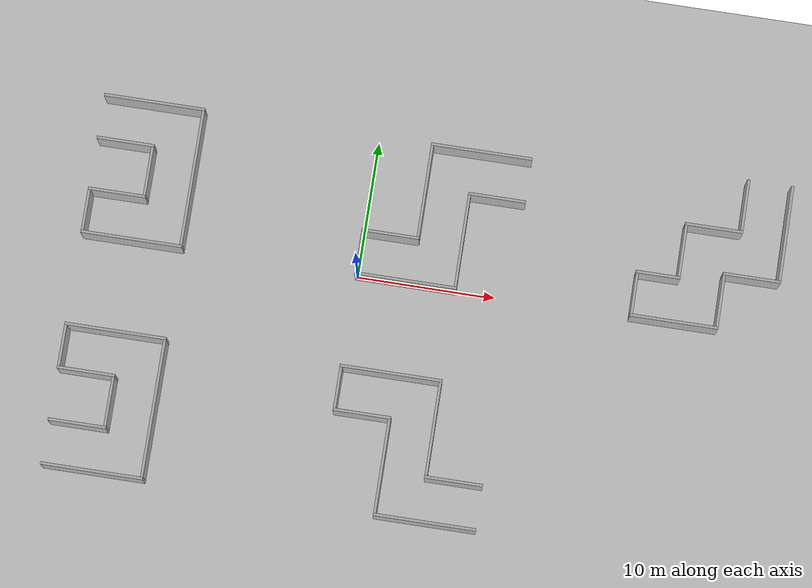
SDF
<sdf version="1.4">
 <world name="feedback_experiment_world_0">
  <include><uri>model://ground_plane</uri></include>
  <include><uri>model://sun</uri></include>
  <model name="World_0">
   <link name="Wall_1">
    <collision name="Wall_1_Collision">
     <geometry><box><size>7.4 0.2 2.5</size></box></geometry>
     <pose>0 0 1.25 0 0 0</pose>
    </collision>
    <visual name="Wall_1_Visual">
     <pose>0 0 1.25 0 0 0</pose>
     <geometry><box><size>7.4 0.2 2.5</size></box></geometry>
     <material>
      <script><uri>file://media/materials/scripts/kitchen.material</uri><name>Kitchen/Wall</name></script>
     </material>
    </visual>
    <velocity_decay><linear>0</linear><angular>0</angular></velocity_decay>
    <pose>3.5 -0.1 0 0 0 0</pose>
   </link>
   <link name="Wall_2">
    <collision name="Wall_2_Collision">
     <geometry><box><size>6.8 0.2 2.5</size></box></geometry>
     <pose>0 0 1.25 0 0 0</pose>
    </collision>
    <visual name="Wall_2_Visual">
     <pose>0 0 1.25 0 0 0</pose>
     <geometry><box><size>6.8 0.2 2.5</size></box></geometry>
     <material>
      <script><uri>file://media/materials/scripts/kitchen.material</uri><name>Kitchen/Wall</name></script>
     </material>
    </visual>
    <velocity_decay><linear>0</linear><angular>0</angular></velocity_decay>
    <pose>7.1 3.4 0 0 0 1.5708</pose>
   </link>
   <link name="Wall_3">
    <collision name="Wall_3_Collision">
     <geometry><box><size>4.2 0.2 2.5</size></box></geometry>
     <pose>0 0 1.25 0 0 0</pose>
    </collision>
    <visual name="Wall_3_Visual">
     <pose>0 0 1.25 0 0 0</pose>
     <geometry><box><size>4.2 0.2 2.5</size></box></geometry>
     <material>
      <script><uri>file://media/materials/scripts/kitchen.material</uri><name>Kitchen/Wall</name></script>
     </material>
    </visual>
    <velocity_decay><linear>0</linear><angular>0</angular></velocity_decay>
    <pose>9.1 6.9 0 0 0 0</pose>
   </link>
   <link name="Wall_4">
    <collision name="Wall_4_Collision">
     <geometry><box><size>7.4 0.2 2.5</size></box></geometry>
     <pose>0 0 1.25 0 0 0</pose>
    </collision>
    <visual name="Wall_4_Visual">
     <pose>0 0 1.25 0 0 0</pose>
     <geometry><box><size>7.4 0.2 2.5</size></box></geometry>
     <material>
      <script><uri>file://media/materials/scripts/kitchen.material</uri><name>Kitchen/Wall</name></script>
     </material>
    </visual>
    <velocity_decay><linear>0</linear><angular>0</angular></velocity_decay>
    <pose>7.5 10.1 0 0 0 3.14159</pose>
   </link>
   <link name="Wall_5">
    <collision name="Wall_5_Collision">
     <geometry><box><size>6.8 0.2 2.5</size></box></geometry>
     <pose>0 0 1.25 0 0 0</pose>
    </collision>
    <visual name="Wall_5_Visual">
     <pose>0 0 1.25 0 0 0</pose>
     <geometry><box><size>6.8 0.2 2.5</size></box></geometry>
     <material>
      <script><uri>file://media/materials/scripts/kitchen.material</uri><name>Kitchen/Wall</name></script>
     </material>
    </visual>
    <velocity_decay><linear>0</linear><angular>0</angular></velocity_decay>
    <pose>3.9 6.6 0 0 0 -1.5708</pose>
   </link>
   <link name="Wall_6">
    <collision name="Wall_6_Collision">
     <geometry><box><size>4.2 0.2 2.5</size></box></geometry>
     <pose>0 0 1.25 0 0 0</pose>
    </collision>
    <visual name="Wall_6_Visual">
     <pose>0 0 1.25 0 0 0</pose>
     <geometry><box><size>4.2 0.2 2.5</size></box></geometry>
     <material>
      <script><uri>file://media/materials/scripts/kitchen.material</uri><name>Kitchen/Wall</name></script>
     </material>
    </visual>
    <velocity_decay><linear>0</linear><angular>0</angular></velocity_decay>
    <pose>1.9 3.1 0 0 0 3.14159</pose>
   </link>
   <link name="Wall_7">
    <collision name="Wall_7_Collision">
     <geometry><box><size>3 0.2 2.5</size></box></geometry>
     <pose>0 0 1.25 0 0 0</pose>
    </collision>
    <visual name="Wall_7_Visual">
     <pose>0 0 1.25 0 0 0</pose>
     <geometry><box><size>3 0.2 2.5</size></box></geometry>
     <material>
      <script><uri>file://media/materials/scripts/kitchen.material</uri><name>Kitchen/Wall</name></script>
     </material>
    </visual>
    <velocity_decay><linear>0</linear><angular>0</angular></velocity_decay>
    <pose>-0.1 1.5 0 0 0 -1.5708</pose>
   </link>
   <static>1</static>
  </model>
  <model name="World_1">
   <link name="Wall_1">
    <collision name="Wall_1_Collision">
     <geometry><box><size>7.4 0.2 2.5</size></box></geometry>
     <pose>0 0 1.25 0 0 0</pose>
    </collision>
    <visual name="Wall_1_Visual">
     <pose>0 0 1.25 0 0 0</pose>
     <geometry><box><size>7.4 0.2 2.5</size></box></geometry>
     <material>
      <script><uri>file://media/materials/scripts/kitchen.material</uri><name>Kitchen/Wall</name></script>
     </material>
    </visual>
    <velocity_decay><linear>0</linear><angular>0</angular></velocity_decay>
    <pose>3.5 3.1 0 0 0 0</pose>
   </link>
   <link name="Wall_2">
    <collision name="Wall_2_Collision">
     <geometry><box><size>6.8 0.2 2.5</size></box></geometry>
     <pose>0 0 1.25 0 0 0</pose>
    </collision>
    <visual name="Wall_2_Visual">
     <pose>0 0 1.25 0 0 0</pose>
     <geometry><box><size>6.8 0.2 2.5</size></box></geometry>
     <material>
      <script><uri>file://media/materials/scripts/kitchen.material</uri><name>Kitchen/Wall</name></script>
     </material>
    </visual>
    <velocity_decay><linear>0</linear><angular>0</angular></velocity_decay>
    <pose>7.1 -0.4 0 0 0 1.5708</pose>
   </link>
   <link name="Wall_3">
    <collision name="Wall_3_Collision">
     <geometry><box><size>4.2 0.2 2.5</size></box></geometry>
     <pose>0 0 1.25 0 0 0</pose>
    </collision>
    <visual name="Wall_3_Visual">
     <pose>0 0 1.25 0 0 0</pose>
     <geometry><box><size>4.2 0.2 2.5</size></box></geometry>
     <material>
      <script><uri>file://media/materials/scripts/kitchen.material</uri><name>Kitchen/Wall</name></script>
     </material>
    </visual>
    <velocity_decay><linear>0</linear><angular>0</angular></velocity_decay>
    <pose>9.1 -3.9 0 0 0 0</pose>
   </link>
   <link name="Wall_4">
    <collision name="Wall_4_Collision">
     <geometry><box><size>7.4 0.2 2.5</size></box></geometry>
     <pose>0 0 1.25 0 0 0</pose>
    </collision>
    <visual name="Wall_4_Visual">
     <pose>0 0 1.25 0 0 0</pose>
     <geometry><box><size>7.4 0.2 2.5</size></box></geometry>
     <material>
      <script><uri>file://media/materials/scripts/kitchen.material</uri><name>Kitchen/Wall</name></script>
     </material>
    </visual>
    <velocity_decay><linear>0</linear><angular>0</angular></velocity_decay>
    <pose>7.5 -7.1 0 0 0 3.14159</pose>
   </link>
   <link name="Wall_5">
    <collision name="Wall_5_Collision">
     <geometry><box><size>6.8 0.2 2.5</size></box></geometry>
     <pose>0 0 1.25 0 0 0</pose>
    </collision>
    <visual name="Wall_5_Visual">
     <pose>0 0 1.25 0 0 0</pose>
     <geometry><box><size>6.8 0.2 2.5</size></box></geometry>
     <material>
      <script><uri>file://media/materials/scripts/kitchen.material</uri><name>Kitchen/Wall</name></script>
     </material>
    </visual>
    <velocity_decay><linear>0</linear><angular>0</angular></velocity_decay>
    <pose>3.9 -3.6 0 0 0 -1.5708</pose>
   </link>
   <link name="Wall_6">
    <collision name="Wall_6_Collision">
     <geometry><box><size>4.2 0.2 2.5</size></box></geometry>
     <pose>0 0 1.25 0 0 0</pose>
    </collision>
    <visual name="Wall_6_Visual">
     <pose>0 0 1.25 0 0 0</pose>
     <geometry><box><size>4.2 0.2 2.5</size></box></geometry>
     <material>
      <script><uri>file://media/materials/scripts/kitchen.material</uri><name>Kitchen/Wall</name></script>
     </material>
    </visual>
    <velocity_decay><linear>0</linear><angular>0</angular></velocity_decay>
    <pose>1.9 -0.1 0 0 0 3.14159</pose>
   </link>
   <link name="Wall_7">
    <collision name="Wall_7_Collision">
     <geometry><box><size>3 0.2 2.5</size></box></geometry>
     <pose>0 0 1.25 0 0 0</pose>
    </collision>
    <visual name="Wall_7_Visual">
     <pose>0 0 1.25 0 0 0</pose>
     <geometry><box><size>3 0.2 2.5</size></box></geometry>
     <material>
      <script><uri>file://media/materials/scripts/kitchen.material</uri><name>Kitchen/Wall</name></script>
     </material>
    </visual>
    <velocity_decay><linear>0</linear><angular>0</angular></velocity_decay>
    <pose>-0.1 1.5 0 0 0 -1.5708</pose>
   </link>
   <pose>0 -10 0 0 0 0</pose>
   <static>1</static>
  </model>
  <model name="World_2">
   <link name="Wall_1">
    <collision name="Wall_1_Collision">
     <geometry><box><size>7.4 0.2 2.5</size></box></geometry>
     <pose>0 0 1.25 0 0 0</pose>
    </collision>
    <visual name="Wall_1_Visual">
     <pose>0 0 1.25 0 0 0</pose>
     <geometry><box><size>7.4 0.2 2.5</size></box></geometry>
     <material>
      <script><uri>file://media/materials/scripts/kitchen.material</uri><name>Kitchen/Wall</name></script>
     </material>
    </visual>
    <velocity_decay><linear>0</linear><angular>0</angular></velocity_decay>
    <pose>3.5 -0.1 0 0 0 0</pose>
   </link>
   <link name="Wall_2">
    <collision name="Wall_2_Collision">
     <geometry><box><size>10 0.2 2.5</size></box></geometry>
     <pose>0 0 1.25 0 0 0</pose>
    </collision>
    <visual name="Wall_2_Visual">
     <pose>0 0 1.25 0 0 0</pose>
     <geometry><box><size>10 0.2 2.5</size></box></geometry>
     <material>
      <script><uri>file://media/materials/scripts/kitchen.material</uri><name>Kitchen/Wall</name></script>
     </material>
    </visual>
    <velocity_decay><linear>0</linear><angular>0</angular></velocity_decay>
    <pose>7.1 5 0 0 0 1.5708</pose>
   </link>
   <link name="Wall_3">
    <collision name="Wall_3_Collision">
     <geometry><box><size>7.4 0.2 2.5</size></box></geometry>
     <pose>0 0 1.25 0 0 0</pose>
    </collision>
    <visual name="Wall_3_Visual">
     <pose>0 0 1.25 0 0 0</pose>
     <geometry><box><size>7.4 0.2 2.5</size></box></geometry>
     <material>
      <script><uri>file://media/materials/scripts/kitchen.material</uri><name>Kitchen/Wall</name></script>
     </material>
    </visual>
    <velocity_decay><linear>0</linear><angular>0</angular></velocity_decay>
    <pose>3.5 10.1 0 0 0 0</pose>
   </link>
   <link name="Wall4">
    <collision name="Wall_4_Collision">
     <geometry><box><size>4.2 0.2 2.5</size></box></geometry>
     <pose>0 0 1.25 0 0 0</pose>
    </collision>
    <visual name="Wall_4_Visual">
     <pose>0 0 1.25 0 0 0</pose>
     <geometry><box><size>4.2 0.2 2.5</size></box></geometry>
     <material>
      <script><uri>file://media/materials/scripts/kitchen.material</uri><name>Kitchen/Wall</name></script>
     </material>
    </visual>
    <velocity_decay><linear>0</linear><angular>0</angular></velocity_decay>
    <pose>1.9 6.9 0 0 0 3.14159</pose>
   </link>
   <link name="Wall_5">
    <collision name="Wall_5_Collision">
     <geometry><box><size>3.6 0.2 2.5</size></box></geometry>
     <pose>0 0 1.25 0 0 0</pose>
    </collision>
    <visual name="Wall_5_Visual">
     <pose>0 0 1.25 0 0 0</pose>
     <geometry><box><size>3.6 0.2 2.5</size></box></geometry>
     <material>
      <script><uri>file://media/materials/scripts/kitchen.material</uri><name>Kitchen/Wall</name></script>
     </material>
    </visual>
    <velocity_decay><linear>0</linear><angular>0</angular></velocity_decay>
    <pose>3.9 5 0 0 0 -1.5708</pose>
   </link>
   <link name="Wall_6">
    <collision name="Wall_6_Collision">
     <geometry><box><size>4.2 0.2 2.5</size></box></geometry>
     <pose>0 0 1.25 0 0 0</pose>
    </collision>
    <visual name="Wall_6_Visual">
     <pose>0 0 1.25 0 0 0</pose>
     <geometry><box><size>4.2 0.2 2.5</size></box></geometry>
     <material>
      <script><uri>file://media/materials/scripts/kitchen.material</uri><name>Kitchen/Wall</name></script>
     </material>
    </visual>
    <velocity_decay><linear>0</linear><angular>0</angular></velocity_decay>
    <pose>1.9 3.1 0 0 0 3.14159</pose>
   </link>
   <link name="Wall_7">
    <collision name="Wall_7_Collision">
     <geometry><box><size>3 0.2 2.5</size></box></geometry>
     <pose>0 0 1.25 0 0 0</pose>
    </collision>
    <visual name="Wall_7_Visual">
     <pose>0 0 1.25 0 0 0</pose>
     <geometry><box><size>3 0.2 2.5</size></box></geometry>
     <material>
      <script><uri>file://media/materials/scripts/kitchen.material</uri><name>Kitchen/Wall</name></script>
     </material>
    </visual>
    <velocity_decay><linear>0</linear><angular>0</angular></velocity_decay>
    <pose>-0.1 1.5 0 0 0 -1.5708</pose>
   </link>
   <pose>-20 0 0 0 0 0</pose>
   <static>1</static>
  </model>
  <model name="World_3">
   <link name="Wall_1">
    <collision name="Wall_1_Collision">
     <geometry><box><size>7.4 0.2 2.5</size></box></geometry>
     <pose>0 0 1.25 0 0 0</pose>
    </collision>
    <visual name="Wall_1_Visual">
     <pose>0 0 1.25 0 0 0</pose>
     <geometry><box><size>7.4 0.2 2.5</size></box></geometry>
     <material>
      <script><uri>file://media/materials/scripts/kitchen.material</uri><name>Kitchen/Wall</name></script>
     </material>
    </visual>
    <velocity_decay><linear>0</linear><angular>0</angular></velocity_decay>
    <pose>3.5 3.1 0 0 0 0</pose>
   </link>
   <link name="Wall_2">
    <collision name="Wall_2_Collision">
     <geometry><box><size>10 0.2 2.5</size></box></geometry>
     <pose>0 0 1.25 0 0 0</pose>
    </collision>
    <visual name="Wall_2_Visual">
     <pose>0 0 1.25 0 0 0</pose>
     <geometry><box><size>10 0.2 2.5</size></box></geometry>
     <material>
      <script><uri>file://media/materials/scripts/kitchen.material</uri><name>Kitchen/Wall</name></script>
     </material>
    </visual>
    <velocity_decay><linear>0</linear><angular>0</angular></velocity_decay>
    <pose>7.1 -2 0 0 0 1.5708</pose>
   </link>
   <link name="Wall_3">
    <collision name="Wall_3_Collision">
     <geometry><box><size>7.4 0.2 2.5</size></box></geometry>
     <pose>0 0 1.25 0 0 0</pose>
    </collision>
    <visual name="Wall_3_Visual">
     <pose>0 0 1.25 0 0 0</pose>
     <geometry><box><size>7.4 0.2 2.5</size></box></geometry>
     <material>
      <script><uri>file://media/materials/scripts/kitchen.material</uri><name>Kitchen/Wall</name></script>
     </material>
    </visual>
    <velocity_decay><linear>0</linear><angular>0</angular></velocity_decay>
    <pose>3.5 -7.1 0 0 0 0</pose>
   </link>
   <link name="Wall_4">
    <collision name="Wall_4_Collision">
     <geometry><box><size>4.2 0.2 2.5</size></box></geometry>
     <pose>0 0 1.25 0 0 0</pose>
    </collision>
    <visual name="Wall_4_Visual">
     <pose>0 0 1.25 0 0 0</pose>
     <geometry><box><size>4.2 0.2 2.5</size></box></geometry>
     <material>
      <script><uri>file://media/materials/scripts/kitchen.material</uri><name>Kitchen/Wall</name></script>
     </material>
    </visual>
    <velocity_decay><linear>0</linear><angular>0</angular></velocity_decay>
    <pose>1.9 -3.9 0 0 0 3.14159</pose>
   </link>
   <link name="Wall_5">
    <collision name="Wall_5_Collision">
     <geometry><box><size>3.6 0.2 2.5</size></box></geometry>
     <pose>0 0 1.25 0 0 0</pose>
    </collision>
    <visual name="Wall_5_Visual">
     <pose>0 0 1.25 0 0 0</pose>
     <geometry><box><size>3.6 0.2 2.5</size></box></geometry>
     <material>
      <script><uri>file://media/materials/scripts/kitchen.material</uri><name>Kitchen/Wall</name></script>
     </material>
    </visual>
    <velocity_decay><linear>0</linear><angular>0</angular></velocity_decay>
    <pose>3.9 -2 0 0 0 -1.5708</pose>
   </link>
   <link name="Wall_6">
    <collision name="Wall_6_Collision">
     <geometry><box><size>4.2 0.2 2.5</size></box></geometry>
     <pose>0 0 1.25 0 0 0</pose>
    </collision>
    <visual name="Wall_6_Visual">
     <pose>0 0 1.25 0 0 0</pose>
     <geometry><box><size>4.2 0.2 2.5</size></box></geometry>
     <material>
      <script><uri>file://media/materials/scripts/kitchen.material</uri><name>Kitchen/Wall</name></script>
     </material>
    </visual>
    <velocity_decay><linear>0</linear><angular>0</angular></velocity_decay>
    <pose>1.9 -0.1 0 0 0 3.14159</pose>
   </link>
   <link name="Wall_7">
    <collision name="Wall_7_Collision">
     <geometry><box><size>3 0.2 2.5</size></box></geometry>
     <pose>0 0 1.25 0 0 0</pose>
    </collision>
    <visual name="Wall_7_Visual">
     <pose>0 0 1.25 0 0 0</pose>
     <geometry><box><size>3 0.2 2.5</size></box></geometry>
     <material>
      <script><uri>file://media/materials/scripts/kitchen.material</uri><name>Kitchen/Wall</name></script>
     </material>
    </visual>
    <velocity_decay><linear>0</linear><angular>0</angular></velocity_decay>
    <pose>-0.1 1.5 0 0 0 -1.5708</pose>
   </link>
   <pose>-20 -10 0 0 0 0</pose>
   <static>1</static>
  </model>
  <model name="World_4">
   <link name="Wall_1">
    <collision name="Wall_1_Collision">
     <geometry><box><size>6.4 0.2 2.5</size></box></geometry>
     <pose>0 0 1.25 0 0 0</pose>
    </collision>
    <visual name="Wall_1_Visual">
     <pose>0 0 1.25 0 0 0</pose>
     <geometry><box><size>6.4 0.2 2.5</size></box></geometry>
     <material>
      <script><uri>file://media/materials/scripts/kitchen.material</uri><name>Kitchen/Wall</name></script>
     </material>
    </visual>
    <velocity_decay><linear>0</linear><angular>0</angular></velocity_decay>
    <pose>3 -0.1 0 0 0 0</pose>
   </link>
   <link name="Wall_2">
    <collision name="Wall_2_Collision">
     <geometry><box><size>3.8 0.2 2.5</size></box></geometry>
     <pose>0 0 1.25 0 0 0</pose>
    </collision>
    <visual name="Wall_2_Visual">
     <pose>0 0 1.25 0 0 0</pose>
     <geometry><box><size>3.8 0.2 2.5</size></box></geometry>
     <material>
      <script><uri>file://media/materials/scripts/kitchen.material</uri><name>Kitchen/Wall</name></script>
     </material>
    </visual>
    <velocity_decay><linear>0</linear><angular>0</angular></velocity_decay>
    <pose>6.1 1.9 0 0 0 1.5708</pose>
   </link>
   <link name="Wall_3">
    <collision name="Wall_3_Collision">
     <geometry><box><size>4.2 0.2 2.5</size></box></geometry>
     <pose>0 0 1.25 0 0 0</pose>
    </collision>
    <visual name="Wall_3_Visual">
     <pose>0 0 1.25 0 0 0</pose>
     <geometry><box><size>4.2 0.2 2.5</size></box></geometry>
     <material>
      <script><uri>file://media/materials/scripts/kitchen.material</uri><name>Kitchen/Wall</name></script>
     </material>
    </visual>
    <velocity_decay><linear>0</linear><angular>0</angular></velocity_decay>
    <pose>8.1 3.9 0 0 0 0</pose>
   </link>
   <link name="Wall_4">
    <collision name="Wall_4_Collision">
     <geometry><box><size>7 0.2 2.5</size></box></geometry>
     <pose>0 0 1.25 0 0 0</pose>
    </collision>
    <visual name="Wall_4_Visual">
     <pose>0 0 1.25 0 0 0</pose>
     <geometry><box><size>7 0.2 2.5</size></box></geometry>
     <material>
      <script><uri>file://media/materials/scripts/kitchen.material</uri><name>Kitchen/Wall</name></script>
     </material>
    </visual>
    <velocity_decay><linear>0</linear><angular>0</angular></velocity_decay>
    <pose>10.1 7.5 0 0 0 1.5708</pose>
   </link>
   <link name="Wall_5">
    <collision name="Wall_5_Collision">
     <geometry><box><size>3.8 0.2 2.5</size></box></geometry>
     <pose>0 0 1.25 0 0 0</pose>
    </collision>
    <visual name="Wall_5_Visual">
     <pose>0 0 1.25 0 0 0</pose>
     <geometry><box><size>3.8 0.2 2.5</size></box></geometry>
     <material>
      <script><uri>file://media/materials/scripts/kitchen.material</uri><name>Kitchen/Wall</name></script>
     </material>
    </visual>
    <velocity_decay><linear>0</linear><angular>0</angular></velocity_decay>
    <pose>6.9 9.1 0 0 0 -1.5708</pose>
   </link>
   <link name="Wall_6">
    <collision name="Wall_6_Collision">
     <geometry><box><size>4.2 0.2 2.5</size></box></geometry>
     <pose>0 0 1.25 0 0 0</pose>
    </collision>
    <visual name="Wall_6_Visual">
     <pose>0 0 1.25 0 0 0</pose>
     <geometry><box><size>4.2 0.2 2.5</size></box></geometry>
     <material>
      <script><uri>file://media/materials/scripts/kitchen.material</uri><name>Kitchen/Wall</name></script>
     </material>
    </visual>
    <velocity_decay><linear>0</linear><angular>0</angular></velocity_decay>
    <pose>4.9 7.1 0 0 0 3.14159</pose>
   </link>
   <link name="Wall_7">
    <collision name="Wall_7_Collision">
     <geometry><box><size>3.8 0.2 2.5</size></box></geometry>
     <pose>0 0 1.25 0 0 0</pose>
    </collision>
    <visual name="Wall_7_Visual">
     <pose>0 0 1.25 0 0 0</pose>
     <geometry><box><size>3.8 0.2 2.5</size></box></geometry>
     <material>
      <script><uri>file://media/materials/scripts/kitchen.material</uri><name>Kitchen/Wall</name></script>
     </material>
    </visual>
    <velocity_decay><linear>0</linear><angular>0</angular></velocity_decay>
    <pose>2.9 5.1 0 0 0 -1.5708</pose>
   </link>
   <link name="Wall_8">
    <collision name="Wall_8_Collision">
     <geometry><box><size>3.2 0.2 2.5</size></box></geometry>
     <pose>0 0 1.25 0 0 0</pose>
    </collision>
    <visual name="Wall_8_Visual">
     <pose>0 0 1.25 0 0 0</pose>
     <geometry><box><size>3.2 0.2 2.5</size></box></geometry>
     <material>
      <script><uri>file://media/materials/scripts/kitchen.material</uri><name>Kitchen/Wall</name></script>
     </material>
    </visual>
    <velocity_decay><linear>0</linear><angular>0</angular></velocity_decay>
    <pose>1.4 3.1 0 0 0 3.14159</pose>
   </link>
   <link name="Wall_9">
    <collision name="Wall_9_Collision">
     <geometry><box><size>3 0.2 2.5</size></box></geometry>
     <pose>0 0 1.25 0 0 0</pose>
    </collision>
    <visual name="Wall_9_Visual">
     <pose>0 0 1.25 0 0 0</pose>
     <geometry><box><size>3 0.2 2.5</size></box></geometry>
     <material>
      <script><uri>file://media/materials/scripts/kitchen.material</uri><name>Kitchen/Wall</name></script>
     </material>
    </visual>
    <velocity_decay><linear>0</linear><angular>0</angular></velocity_decay>
    <pose>-0.1 1.5 0 0 0 -1.5708</pose>
   </link>
   <pose>20 0 0 0 0 0</pose>
   <static>1</static>
  </model>
 </world>
</sdf>
